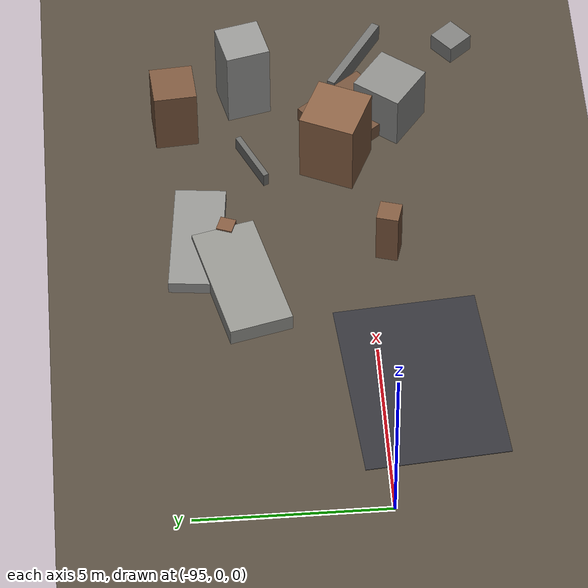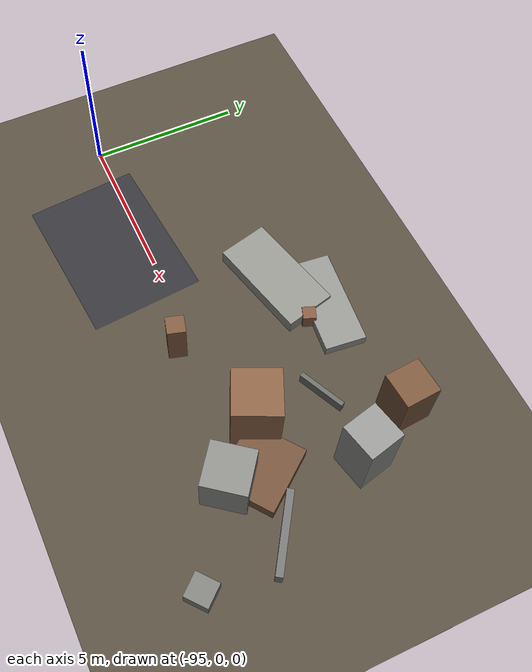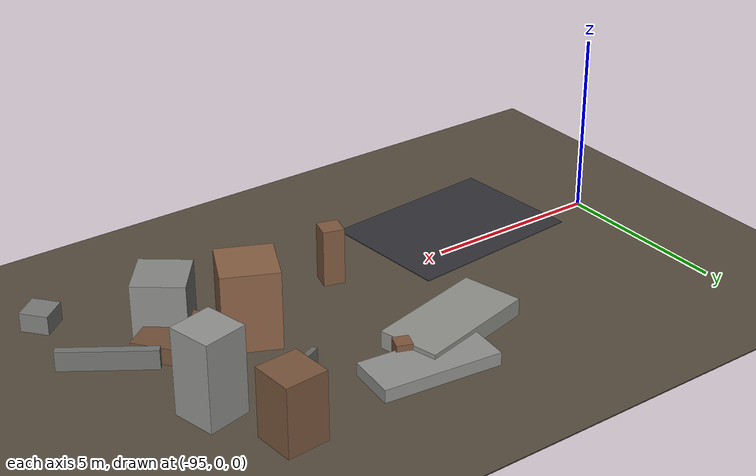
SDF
<sdf version="1.6">
 <world name="navitas_arena">
  <model name="ground_plane">
   <static>true</static>
   <link name="link">
    <collision name="collision">
     <geometry><plane><normal>0 0 1</normal><size>400 400</size></plane></geometry>
     <surface><friction><ode><mu>0.750</mu><mu2>0.750</mu2></ode></friction></surface>
    </collision>
    <visual name="visual">
     <cast_shadows>false</cast_shadows>
     <geometry><plane><normal>0 0 1</normal><size>400 400</size></plane></geometry>
     <material><ambient>0.150 0.140 0.130 1</ambient><diffuse>0.150 0.140 0.130 1</diffuse></material>
    </visual>
   </link>
  </model>
  <model name="gd_kolay">
   <static>true</static>
   <pose>-90.000 0.000 0.010 0 0 0.000</pose>
   <link name="link">
    <collision name="col"><geometry><box><size>50.000 50.000 0.020</size></box></geometry></collision>
    <visual name="vis">
     <geometry><box><size>50.000 50.000 0.020</size></box></geometry>
     <material><ambient>0.34 0.30 0.25 1</ambient><diffuse>0.34 0.30 0.25 1</diffuse></material>
    </visual>
   </link>
  </model>
  <model name="road_kolay_2_7">
   <static>true</static>
   <pose>-91.109 -1.000 0.040 0 0 1.655</pose>
   <link name="link">
    <collision name="col"><geometry><box><size>3.710 5.100 0.020</size></box></geometry></collision>
    <visual name="vis">
     <geometry><box><size>3.710 5.100 0.020</size></box></geometry>
     <material><ambient>0.20 0.20 0.22 1</ambient><diffuse>0.20 0.20 0.22 1</diffuse></material>
    </visual>
   </link>
  </model>
  <model name="deb_kolay_2">
   <static>true</static>
   <pose>-86.171 4.408 0.188 0 0 3.038</pose>
   <link name="link">
    <collision name="col"><geometry><box><size>3.222 1.344 0.375</size></box></geometry></collision>
    <visual name="vis">
     <geometry><box><size>3.222 1.344 0.375</size></box></geometry>
     <material><ambient>0.57 0.57 0.56 1</ambient><diffuse>0.57 0.57 0.56 1</diffuse></material>
    </visual>
   </link>
  </model>
  <model name="deb_kolay_3">
   <static>true</static>
   <pose>-80.027 -0.167 0.275 0 0 2.551</pose>
   <link name="link">
    <collision name="col"><geometry><box><size>2.510 0.224 0.550</size></box></geometry></collision>
    <visual name="vis">
     <geometry><box><size>2.510 0.224 0.550</size></box></geometry>
     <material><ambient>0.45 0.45 0.44 1</ambient><diffuse>0.45 0.45 0.44 1</diffuse></material>
    </visual>
   </link>
  </model>
  <model name="deb_kolay_8">
   <static>true</static>
   <pose>-82.028 0.072 0.239 0 0 0.648</pose>
   <link name="link">
    <collision name="col"><geometry><box><size>1.871 2.128 0.479</size></box></geometry></collision>
    <visual name="vis">
     <geometry><box><size>1.871 2.128 0.479</size></box></geometry>
     <material><ambient>0.45 0.32 0.23 1</ambient><diffuse>0.45 0.32 0.23 1</diffuse></material>
    </visual>
   </link>
  </model>
  <model name="deb_kolay_27">
   <static>true</static>
   <pose>-83.515 0.589 1.078 0 0 2.713</pose>
   <link name="link">
    <collision name="col"><geometry><box><size>1.492 1.492 2.156</size></box></geometry></collision>
    <visual name="vis">
     <geometry><box><size>1.492 1.492 2.156</size></box></geometry>
     <material><ambient>0.54 0.38 0.27 1</ambient><diffuse>0.54 0.38 0.27 1</diffuse></material>
    </visual>
   </link>
  </model>
  <model name="deb_kolay_42">
   <static>true</static>
   <pose>-85.942 3.640 0.271 0 0 1.216</pose>
   <link name="link">
    <collision name="col"><geometry><box><size>0.423 0.423 0.543</size></box></geometry></collision>
    <visual name="vis">
     <geometry><box><size>0.423 0.423 0.543</size></box></geometry>
     <material><ambient>0.51 0.35 0.25 1</ambient><diffuse>0.51 0.35 0.25 1</diffuse></material>
    </visual>
   </link>
  </model>
  <model name="deb_kolay_90">
   <static>true</static>
   <pose>-79.551 -2.891 0.270 0 0 2.262</pose>
   <link name="link">
    <collision name="col"><geometry><box><size>0.768 0.768 0.540</size></box></geometry></collision>
    <visual name="vis">
     <geometry><box><size>0.768 0.768 0.540</size></box></geometry>
     <material><ambient>0.49 0.49 0.48 1</ambient><diffuse>0.49 0.49 0.48 1</diffuse></material>
    </visual>
   </link>
  </model>
  <model name="deb_kolay_105">
   <static>true</static>
   <pose>-82.050 4.816 0.938 0 0 1.646</pose>
   <link name="link">
    <collision name="col"><geometry><box><size>1.138 1.138 1.876</size></box></geometry></collision>
    <visual name="vis">
     <geometry><box><size>1.138 1.138 1.876</size></box></geometry>
     <material><ambient>0.48 0.34 0.24 1</ambient><diffuse>0.48 0.34 0.24 1</diffuse></material>
    </visual>
   </link>
  </model>
  <model name="deb_kolay_135">
   <static>true</static>
   <pose>-87.681 3.334 0.249 0 0 0.243</pose>
   <link name="link">
    <collision name="col"><geometry><box><size>3.422 1.678 0.499</size></box></geometry></collision>
    <visual name="vis">
     <geometry><box><size>3.422 1.678 0.499</size></box></geometry>
     <material><ambient>0.57 0.57 0.55 1</ambient><diffuse>0.57 0.57 0.55 1</diffuse></material>
    </visual>
   </link>
  </model>
  <model name="deb_kolay_145">
   <static>true</static>
   <pose>-82.007 -0.975 0.798 0 0 2.487</pose>
   <link name="link">
    <collision name="col"><geometry><box><size>1.389 1.389 1.596</size></box></geometry></collision>
    <visual name="vis">
     <geometry><box><size>1.389 1.389 1.596</size></box></geometry>
     <material><ambient>0.54 0.54 0.53 1</ambient><diffuse>0.54 0.54 0.53 1</diffuse></material>
    </visual>
   </link>
  </model>
  <model name="deb_kolay_149">
   <static>true</static>
   <pose>-83.485 2.818 0.209 0 0 0.441</pose>
   <link name="link">
    <collision name="col"><geometry><box><size>1.556 0.155 0.417</size></box></geometry></collision>
    <visual name="vis">
     <geometry><box><size>1.556 0.155 0.417</size></box></geometry>
     <material><ambient>0.41 0.41 0.40 1</ambient><diffuse>0.41 0.41 0.40 1</diffuse></material>
    </visual>
   </link>
  </model>
  <model name="deb_kolay_165">
   <static>true</static>
   <pose>-81.084 2.912 1.176 0 0 1.799</pose>
   <link name="link">
    <collision name="col"><geometry><box><size>1.182 1.182 2.352</size></box></geometry></collision>
    <visual name="vis">
     <geometry><box><size>1.182 1.182 2.352</size></box></geometry>
     <material><ambient>0.58 0.58 0.57 1</ambient><diffuse>0.58 0.58 0.57 1</diffuse></material>
    </visual>
   </link>
  </model>
  <model name="chic_kolay_3">
   <static>true</static>
   <pose>-86.725 -0.557 0.800 0 0 2.864</pose>
   <link name="link">
    <collision name="col"><geometry><box><size>0.583 0.583 1.600</size></box></geometry></collision>
    <visual name="vis">
     <geometry><box><size>0.583 0.583 1.600</size></box></geometry>
     <material><ambient>0.50 0.35 0.25 1</ambient><diffuse>0.50 0.35 0.25 1</diffuse></material>
    </visual>
   </link>
  </model>
 </world>
</sdf>
